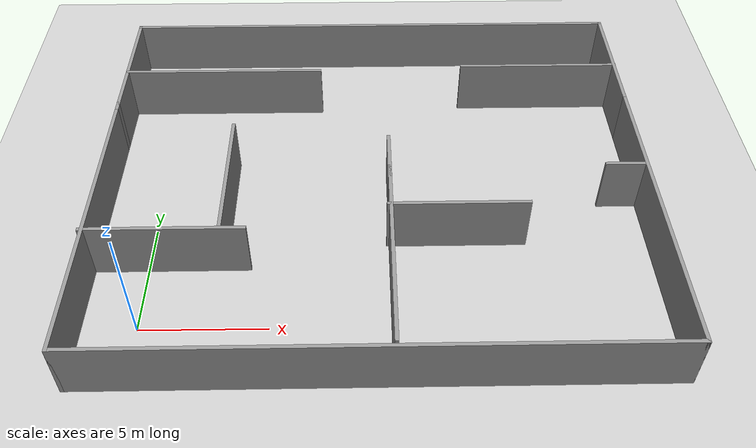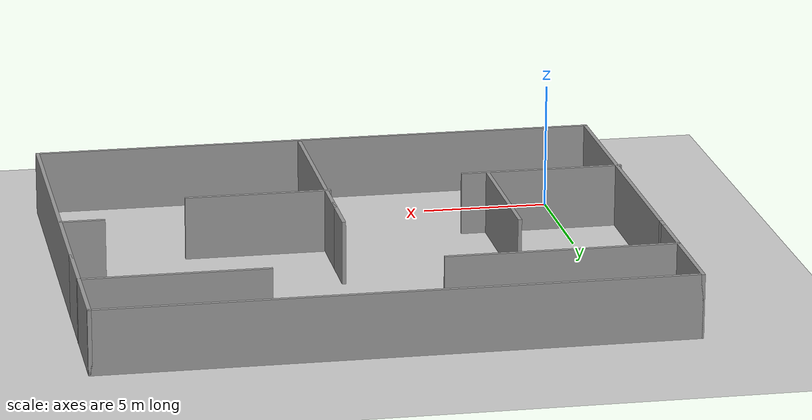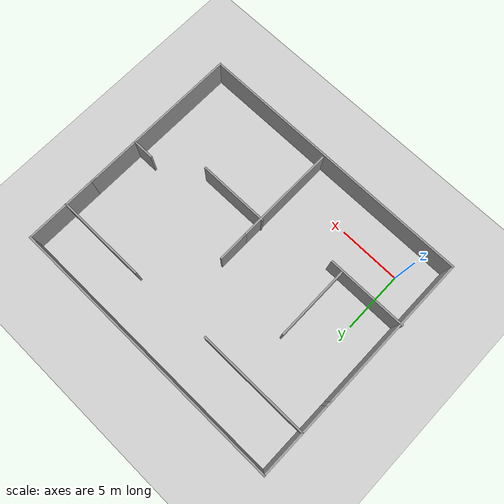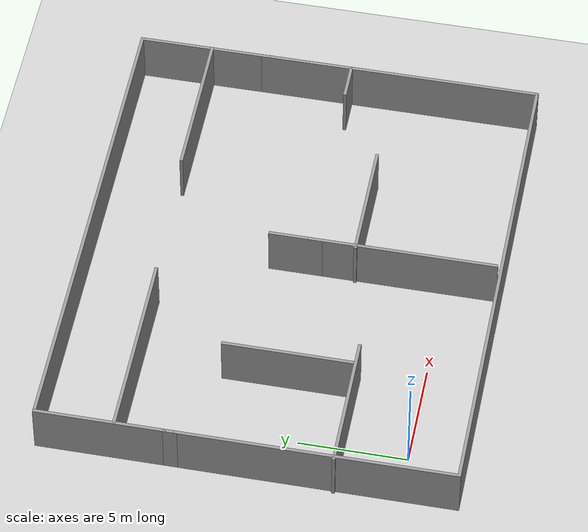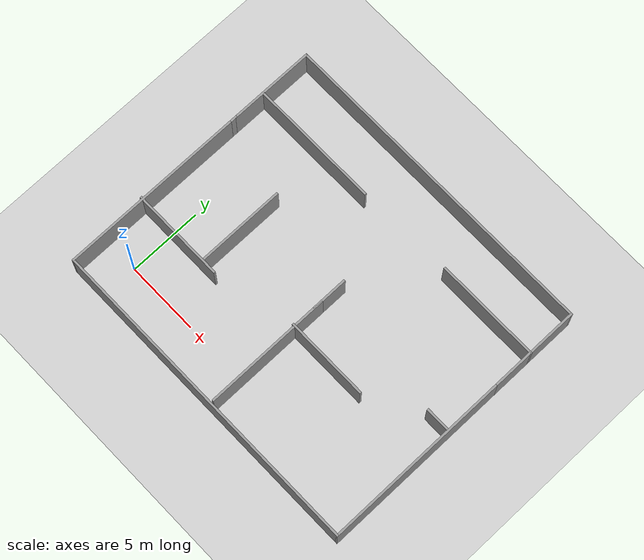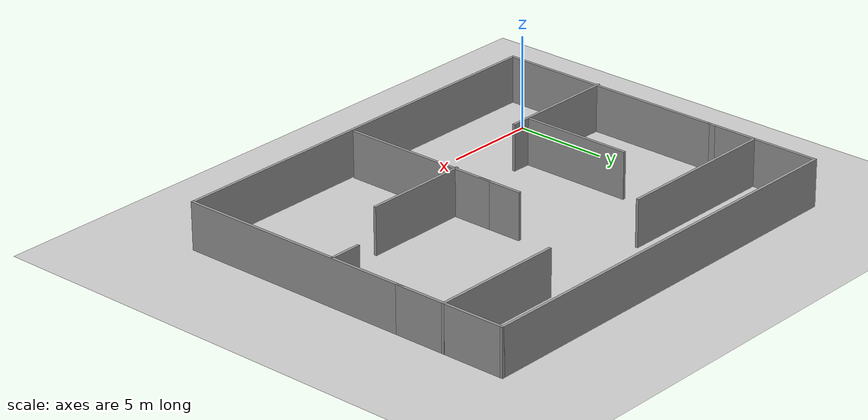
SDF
<sdf version="1.7">
 <world name="default">
  <light name="sun" type="directional">
   <pose>0 0 10 0 -0 0</pose>
   <diffuse>0.8 0.8 0.8 1</diffuse>
   <specular>0.2 0.2 0.2 1</specular>
   <attenuation>
    <range>1000</range>
    <constant>0.9</constant>
    <linear>0.01</linear>
    <quadratic>0.001</quadratic>
   </attenuation>
   <direction>-0.5 0.1 -0.9</direction>
   <spot><inner_angle>0</inner_angle><outer_angle>0</outer_angle><falloff>0</falloff></spot>
  </light>
  <model name="ground_plane">
   <static>1</static>
   <link name="link">
    <collision name="collision">
     <geometry><plane><normal>0 0 1</normal><size>100 100</size></plane></geometry>
     <surface><friction><ode><mu>100</mu><mu2>50</mu2></ode></friction></surface>
    </collision>
    <visual name="visual">
     <cast_shadows>0</cast_shadows>
     <geometry><plane><normal>0 0 1</normal><size>100 100</size></plane></geometry>
     <material>
      <script><uri>file://media/materials/scripts/gazebo.material</uri><name>Gazebo/Grey</name></script>
     </material>
    </visual>
   </link>
  </model>
  <gravity>0 0 -9.8</gravity>
  <magnetic_field>6e-06 2.3e-05 -4.2e-05</magnetic_field>
  <atmosphere type="adiabatic"/>
  <physics type="ode">
   <max_step_size>0.001</max_step_size>
   <real_time_factor>1</real_time_factor>
   <real_time_update_rate>1000</real_time_update_rate>
  </physics>
  <scene><ambient>0.4 0.4 0.4 1</ambient><background>0.7 0.7 0.7 1</background><shadows>1</shadows></scene>
  <spherical_coordinates>
   <surface_model>EARTH_WGS84</surface_model>
   <latitude_deg>0</latitude_deg>
   <longitude_deg>0</longitude_deg>
   <elevation>0</elevation>
   <heading_deg>0</heading_deg>
  </spherical_coordinates>
  <model name="building_room">
   <pose>9.02561 6.91001 0 0 -0 0</pose>
   <link name="Wall_11">
    <collision name="Wall_11_Collision">
     <geometry><box><size>6.5 0.15 2.5</size></box></geometry>
     <pose>0 0 1.25 0 -0 0</pose>
    </collision>
    <visual name="Wall_11_Visual">
     <pose>0 0 1.25 0 -0 0</pose>
     <geometry><box><size>6.5 0.15 2.5</size></box></geometry>
     <material>
      <script><uri>file://media/materials/scripts/gazebo.material</uri><name>Gazebo/Grey</name></script>
      <ambient>1 1 1 1</ambient>
     </material>
     <meta><layer>0</layer></meta>
    </visual>
    <pose>-8.18188 -3.95065 0 0 -0 0</pose>
   </link>
   <link name="Wall_13">
    <collision name="Wall_13_Collision">
     <geometry><box><size>8.75 0.15 2.5</size></box></geometry>
     <pose>0 0 1.25 0 -0 0</pose>
    </collision>
    <visual name="Wall_13_Visual">
     <pose>0 0 1.25 0 -0 0</pose>
     <geometry><box><size>8.75 0.15 2.5</size></box></geometry>
     <material>
      <script><uri>file://media/materials/scripts/gazebo.material</uri><name>Gazebo/Grey</name></script>
      <ambient>1 1 1 1</ambient>
     </material>
     <meta><layer>0</layer></meta>
    </visual>
    <pose>0.693008 -4.92563 0 0 -0 -1.5708</pose>
   </link>
   <link name="Wall_19">
    <collision name="Wall_19_Collision">
     <geometry><box><size>6 0.15 2.5</size></box></geometry>
     <pose>0 0 1.25 0 -0 0</pose>
    </collision>
    <visual name="Wall_19_Visual">
     <pose>0 0 1.25 0 -0 0</pose>
     <geometry><box><size>6 0.15 2.5</size></box></geometry>
     <material>
      <script><uri>file://media/materials/scripts/gazebo.material</uri><name>Gazebo/Grey</name></script>
      <ambient>1 1 1 1</ambient>
     </material>
     <meta><layer>0</layer></meta>
    </visual>
    <pose>-11.2505 6.55 0 0 -0 1.5708</pose>
   </link>
   <link name="Wall_23">
    <collision name="Wall_23_Collision">
     <geometry><box><size>22.75 0.15 2.5</size></box></geometry>
     <pose>0 0 1.25 0 -0 0</pose>
    </collision>
    <visual name="Wall_23_Visual">
     <pose>0 0 1.25 0 -0 0</pose>
     <geometry><box><size>22.75 0.15 2.5</size></box></geometry>
     <material>
      <script><uri>file://media/materials/scripts/gazebo.material</uri><name>Gazebo/Grey</name></script>
      <ambient>1 1 1 1</ambient>
     </material>
     <meta><layer>0</layer></meta>
    </visual>
    <pose>0.049519 9.475 0 0 -0 0</pose>
   </link>
   <link name="Wall_24">
    <collision name="Wall_24_Collision">
     <geometry><box><size>6.25 0.15 2.5</size></box></geometry>
     <pose>0 0 1.25 0 -0 0</pose>
    </collision>
    <visual name="Wall_24_Visual">
     <pose>0 0 1.25 0 -0 0</pose>
     <geometry><box><size>6.25 0.15 2.5</size></box></geometry>
     <material>
      <script><uri>file://media/materials/scripts/gazebo.material</uri><name>Gazebo/Grey</name></script>
      <ambient>1 1 1 1</ambient>
     </material>
     <meta><layer>0</layer></meta>
    </visual>
    <pose>11.3495 6.425 0 0 -0 -1.5708</pose>
   </link>
   <link name="Wall_28">
    <collision name="Wall_28_Collision">
     <geometry><box><size>6 0.15 2.5</size></box></geometry>
     <pose>0 0 1.25 0 -0 0</pose>
    </collision>
    <visual name="Wall_28_Visual">
     <pose>0 0 1.25 0 -0 0</pose>
     <geometry><box><size>6 0.15 2.5</size></box></geometry>
     <material>
      <script><uri>file://media/materials/scripts/gazebo.material</uri><name>Gazebo/Grey</name></script>
      <ambient>1 1 1 1</ambient>
     </material>
     <meta><layer>0</layer></meta>
    </visual>
    <pose>-5.98554 -0.864549 0 0 -0 -1.5708</pose>
   </link>
   <link name="Wall_34">
    <collision name="Wall_34_Collision">
     <geometry><box><size>1.75 0.15 2.5</size></box></geometry>
     <pose>0 0 1.25 0 -0 0</pose>
    </collision>
    <visual name="Wall_34_Visual">
     <pose>0 0 1.25 0 -0 0</pose>
     <geometry><box><size>1.75 0.15 2.5</size></box></geometry>
     <material>
      <script><uri>file://media/materials/scripts/gazebo.material</uri><name>Gazebo/Grey</name></script>
      <ambient>1 1 1 1</ambient>
     </material>
     <meta><layer>0</layer></meta>
    </visual>
    <pose>10.4958 -0.614674 0 0 -0 3.14159</pose>
   </link>
   <link name="Wall_36">
    <collision name="Wall_36_Collision">
     <geometry><box><size>5.75 0.15 2.5</size></box></geometry>
     <pose>0 0 1.25 0 -0 0</pose>
    </collision>
    <visual name="Wall_36_Visual">
     <pose>0 0 1.25 0 -0 0</pose>
     <geometry><box><size>5.75 0.15 2.5</size></box></geometry>
     <material>
      <script><uri>file://media/materials/scripts/gazebo.material</uri><name>Gazebo/Grey</name></script>
      <ambient>1 1 1 1</ambient>
     </material>
     <meta><layer>0</layer></meta>
    </visual>
    <pose>3.39527 -2.75477 0 0 -0 0</pose>
   </link>
   <link name="Wall_40">
    <collision name="Wall_40_Collision">
     <geometry><box><size>9 0.15 2.5</size></box></geometry>
     <pose>0 0 1.25 0 -0 0</pose>
    </collision>
    <visual name="Wall_40_Visual">
     <pose>0 0 1.25 0 -0 0</pose>
     <geometry><box><size>9 0.15 2.5</size></box></geometry>
     <material>
      <script><uri>file://media/materials/scripts/gazebo.material</uri><name>Gazebo/Grey</name></script>
      <ambient>1 1 1 1</ambient>
     </material>
     <meta><layer>0</layer></meta>
    </visual>
    <pose>-6.79943 5.88289 0 0 -0 0</pose>
   </link>
   <link name="Wall_42">
    <collision name="Wall_42_Collision">
     <geometry><box><size>7.25 0.15 2.5</size></box></geometry>
     <pose>0 0 1.25 0 -0 0</pose>
    </collision>
    <visual name="Wall_42_Visual">
     <pose>0 0 1.25 0 -0 0</pose>
     <geometry><box><size>7.25 0.15 2.5</size></box></geometry>
     <material>
      <script><uri>file://media/materials/scripts/gazebo.material</uri><name>Gazebo/Grey</name></script>
      <ambient>1 1 1 1</ambient>
     </material>
     <meta><layer>0</layer></meta>
    </visual>
    <pose>7.80688 6.09569 0 0 -0 0</pose>
   </link>
   <link name="Wall_44">
    <collision name="Wall_44_Collision">
     <geometry><box><size>2.5 0.15 2.5</size></box></geometry>
     <pose>0 0 1.25 0 -0 0</pose>
    </collision>
    <visual name="Wall_44_Visual">
     <pose>0 0 1.25 0 -0 0</pose>
     <geometry><box><size>2.5 0.15 2.5</size></box></geometry>
     <material>
      <script><uri>file://media/materials/scripts/gazebo.material</uri><name>Gazebo/Grey</name></script>
      <ambient>1 1 1 1</ambient>
     </material>
     <meta><layer>0</layer></meta>
    </visual>
    <pose>0.692455 0.03544 0 0 -0 1.5708</pose>
   </link>
   <link name="Wall_5">
    <collision name="Wall_5_Collision">
     <geometry><box><size>12.75 0.15 2.5</size></box></geometry>
     <pose>0 0 1.25 0 -0 0</pose>
    </collision>
    <visual name="Wall_5_Visual">
     <pose>0 0 1.25 0 -0 0</pose>
     <geometry><box><size>12.75 0.15 2.5</size></box></geometry>
     <material>
      <script><uri>file://media/materials/scripts/gazebo.material</uri><name>Gazebo/Grey</name></script>
      <ambient>1 1 1 1</ambient>
     </material>
     <meta><layer>0</layer></meta>
    </visual>
    <pose>-11.2505 -3.175 0 0 -0 -1.5708</pose>
   </link>
   <link name="Wall_6">
    <collision name="Wall_6_Collision">
     <geometry><box><size>22.75 0.15 2.5</size></box></geometry>
     <pose>0 0 1.25 0 -0 0</pose>
    </collision>
    <visual name="Wall_6_Visual">
     <pose>0 0 1.25 0 -0 0</pose>
     <geometry><box><size>22.75 0.15 2.5</size></box></geometry>
     <material>
      <script><uri>file://media/materials/scripts/gazebo.material</uri><name>Gazebo/Grey</name></script>
      <ambient>1 1 1 1</ambient>
     </material>
     <meta><layer>0</layer></meta>
    </visual>
    <pose>0.049519 -9.475 0 0 -0 0</pose>
   </link>
   <link name="Wall_7">
    <collision name="Wall_7_Collision">
     <geometry><box><size>13.25 0.15 2.5</size></box></geometry>
     <pose>0 0 1.25 0 -0 0</pose>
    </collision>
    <visual name="Wall_7_Visual">
     <pose>0 0 1.25 0 -0 0</pose>
     <geometry><box><size>13.25 0.15 2.5</size></box></geometry>
     <material>
      <script><uri>file://media/materials/scripts/gazebo.material</uri><name>Gazebo/Grey</name></script>
      <ambient>1 1 1 1</ambient>
     </material>
     <meta><layer>0</layer></meta>
    </visual>
    <pose>11.3495 -2.925 0 0 -0 1.5708</pose>
   </link>
   <link name="Wall_9">
    <collision name="Wall_9_Collision">
     <geometry><box><size>0.65 0.15 2.5</size></box></geometry>
     <pose>0 0 1.25 0 -0 0</pose>
    </collision>
    <visual name="Wall_9_Visual">
     <pose>0 0 1.25 0 -0 0</pose>
     <geometry><box><size>0.65 0.15 2.5</size></box></geometry>
     <material>
      <script><uri>file://media/materials/scripts/gazebo.material</uri><name>Gazebo/Grey</name></script>
      <ambient>1 1 1 1</ambient>
     </material>
     <meta><layer>0</layer></meta>
    </visual>
    <pose>-11.2505 3.375 0 0 -0 -1.5708</pose>
   </link>
   <static>1</static>
  </model>
 </world>
</sdf>
